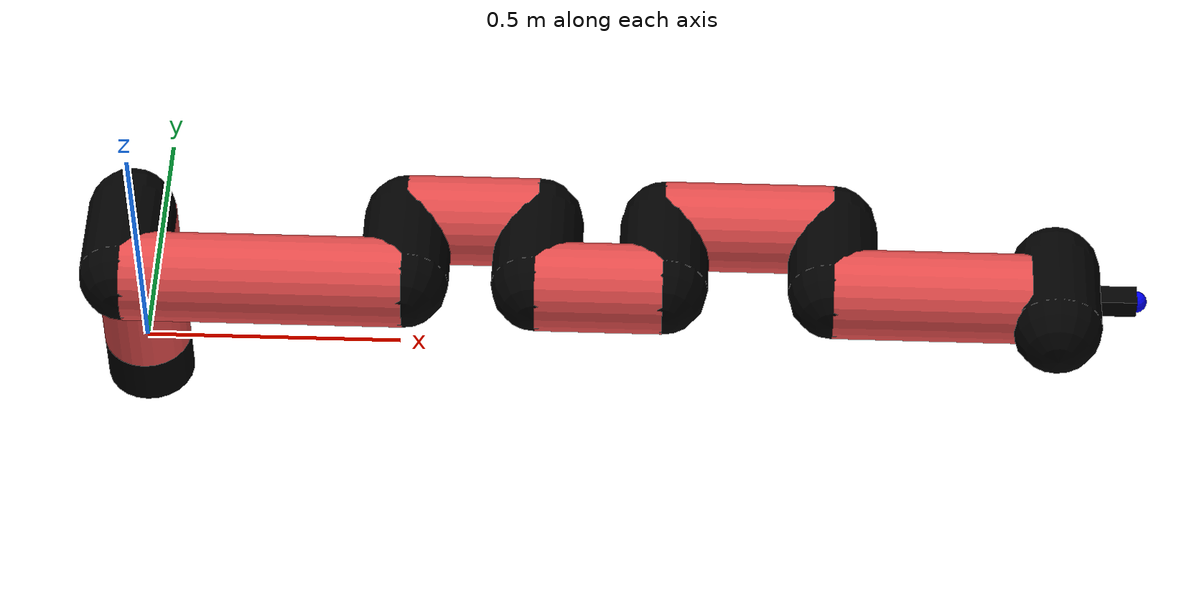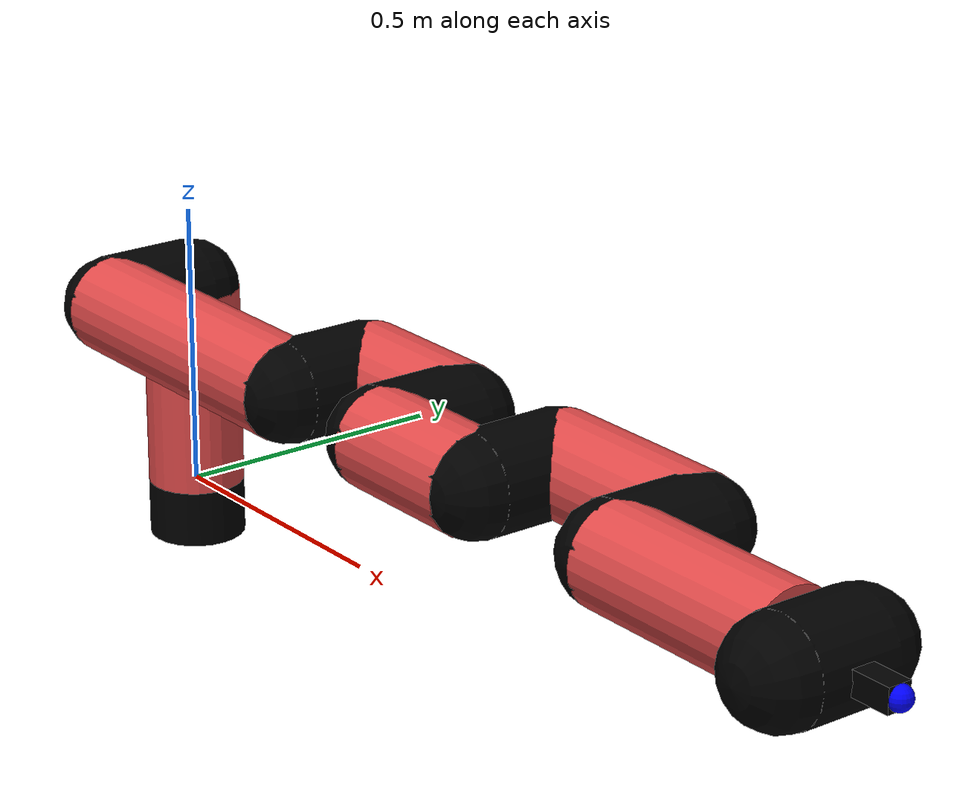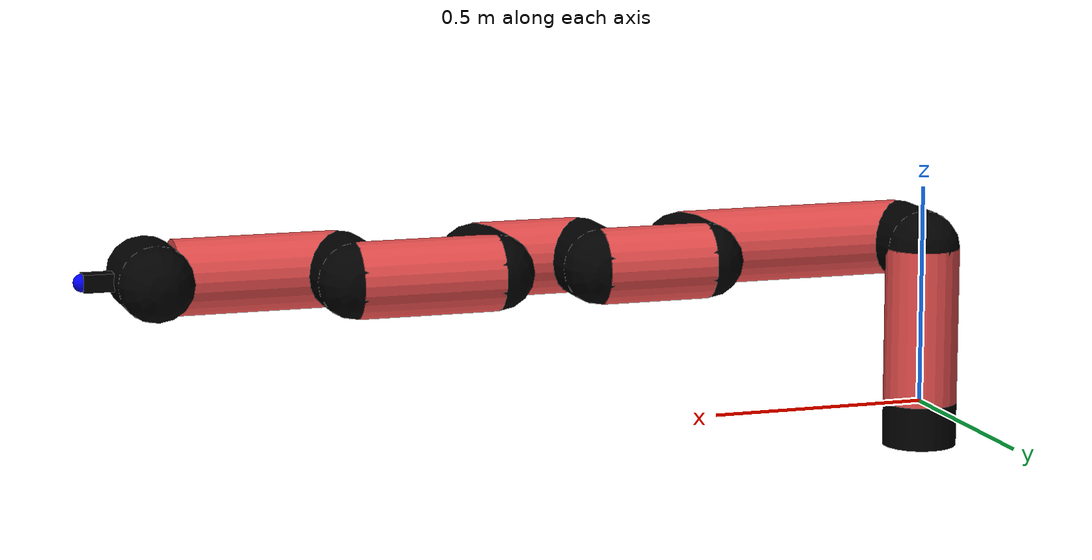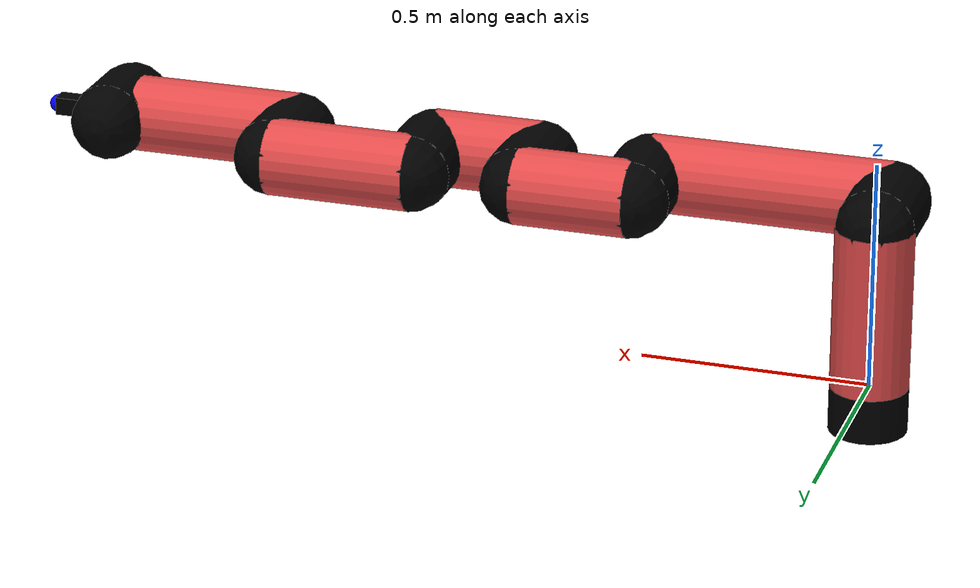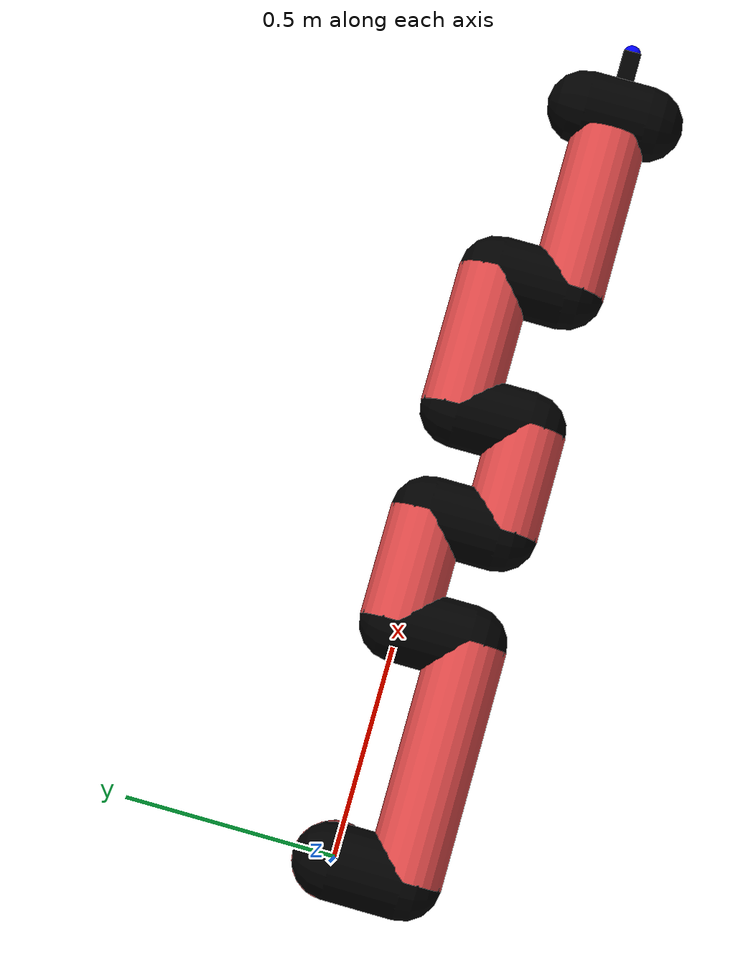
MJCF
<mujoco model="manipulator">
		<compiler angle="degree" coordinate="local" inertiafromgeom="auto" meshdir="meshes/"/>
		<option gravity="0 0 0" integrator="RK4" iterations="30" timestep="0.01"/>

		<default>
		<joint armature="1" limited="true" stiffness="10" damping="15" frictionloss="5.0"/>
		<geom conaffinity="1" condim="3" contype="1" friction=".5 .1 .1" margin="0.002"/>
		<motor ctrllimited="true"/>
		<position ctrllimited="true"/>
		</default>

		<asset>
		<texture builtin="gradient" height="100" rgb1="1.0 1.0 1.0" rgb2="1.0 1.0 1.0" type="skybox" width="100"/>
		<texture builtin="flat" height="32" name="arm_tex" rgb1="0.9 0.3 0.3" type="2d" width="32"/>
		<texture builtin="flat" height="32" name="gripper_tex" rgb1="0.0 0.0 0.0" type="cube" width="32"/>

		<material name="arm_mat" shininess="0.1" specular="0.1" texture="arm_tex"/>
		<material name="gripper_mat" shininess="1" specular="1" texture="gripper_tex"/>
		</asset>

		<worldbody>
		<light cutoff="45" diffuse=".8 .8 .8" dir="0 0.16 -1" directional="false" name="light" pos="0 -2.0 8.0" specular="0.3 0.3 0.3"/>

		<body name="base_link" pos="0 0 -0.1">
		<geom fromto="0 0 0 0 0 0.1" material="arm_mat" name="base_link" rgba="0.0 0.0 0.0 1" size="0.085" type="cylinder"/>
		</body>

		<body name="l1" pos="0 0 0">
<geom fromto="0 0 0 0 0 0.36" material="arm_mat" name="l1" rgba="0.9 0.3 0.3 1" size="0.085" type="cylinder"/>
<geom fromto="0 0 0.36 0 -0.16 0.36" material="arm_mat" name="l1_ex" rgba="0.0 0.0 0.0 1" size="0.085" type="capsule"/>
<joint axis="0 0 1" name="j1" pos="0 0 0" range="-90 90" damping="35.31" frictionloss="10.17"/>

<body name="l2" pos="0 -0.16 0.36">
<geom fromto="0 0 0 0.53 0 0" material="arm_mat" name="l2" rgba="0.9 0.3 0.3 1" size="0.085" type="cylinder"/>
<geom fromto="0.53 0 0 0.53 0.16 0" material="arm_mat" name="l2_ex" rgba="0.0 0.0 0.0 1" size="0.085" type="capsule"/>
<joint axis="0.0 1.0 0.0" name="j2" pos="0 0 0" range="-90 60" damping="23.0" frictionloss="12.21"/>

<body name="l3" pos="0.53 0.16 0">
<geom fromto="0 0 0 0.25 0 0" material="arm_mat" name="l3" rgba="0.9 0.3 0.3 1" size="0.085" type="cylinder"/>
<geom fromto="0.25 0 0 0.25 -0.16 0" material="arm_mat" name="l3_ex" rgba="0.0 0.0 0.0 1" size="0.085" type="capsule"/>
<joint axis="0.0 1.0 0.0" name="j3" pos="0 0 0" range="-30 60" damping="22.83" frictionloss="11.26"/>

<body name="l4" pos="0.25 -0.16 0">
<geom fromto="0 0 0 0.24 0 0" material="arm_mat" name="l4" rgba="0.9 0.3 0.3 1" size="0.085" type="cylinder"/>
<geom fromto="0.24 0 0 0.24 0.16 0" material="arm_mat" name="l4_ex" rgba="0.0 0.0 0.0 1" size="0.085" type="capsule"/>
<joint axis="0.0 1.0 0.0" name="j4" pos="0 0 0" range="-30 60" damping="32.55" frictionloss="10.28"/>

<body name="l5" pos="0.24 0.16 0">
<geom fromto="0 0 0 0.32 0 0" material="arm_mat" name="l5" rgba="0.9 0.3 0.3 1" size="0.085" type="cylinder"/>
<geom fromto="0.32 0 0 0.32 -0.16 0" material="arm_mat" name="l5_ex" rgba="0.0 0.0 0.0 1" size="0.085" type="capsule"/>
<joint axis="0.0 1.0 0.0" name="j5" pos="0 0 0" range="-30 60" damping="29.26" frictionloss="9.14"/>

<body name="l6" pos="0.32 -0.16 0">
<geom fromto="0 0 0 0.37 0 0" material="arm_mat" name="l6" rgba="0.9 0.3 0.3 1" size="0.085" type="cylinder"/>
<joint axis="0.0 1.0 0.0" name="j6" pos="0 0 0" range="-30 60" damping="23.46" frictionloss="12.46"/>

<body name="gripper" pos="0.37 0 0">
<geom fromto="0.05 -0.07 0 0.05 0.07 0" material="gripper_mat" name="gripper" rgba="0.0 0.0 0.0 1" size="0.085" type="capsule"/><joint axis="1 0 0" name="j7" pos="0 0 0" range="-90 90" damping="15" frictionloss="5.0"/><body name="finger" pos="0.1 0 0">
<geom fromto="0 0.0 0 0.1 0.0 0" material="gripper_mat" name="finger" rgba="0.0 0.0 0.0 1" size="0.020 0.06 0.06" type="box"/>
</body>
<site name="current" pos="0.2 0. 0.0" rgba="0. 0. 1.0 1" size="0.02" type="sphere"/>
</body>
</body>
</body>
</body>
</body>
</body>
</body>
</worldbody>
<actuator>
<motor ctrllimited="true" ctrlrange="-1.0 1.0" joint="j1" gear="96.79"/>
<motor ctrllimited="true" ctrlrange="-1.0 1.0" joint="j2" gear="86.66"/>
<motor ctrllimited="true" ctrlrange="-1.0 1.0" joint="j3" gear="75.23"/>
<motor ctrllimited="true" ctrlrange="-1.0 1.0" joint="j4" gear="93.02"/>
<motor ctrllimited="true" ctrlrange="-1.0 1.0" joint="j5" gear="99.67"/>
<motor ctrllimited="true" ctrlrange="-1.0 1.0" joint="j6" gear="90.42"/>
<motor ctrllimited="true" ctrlrange="-1.0 1.0" joint="j7" gear="80"/>
</actuator>
</mujoco>
